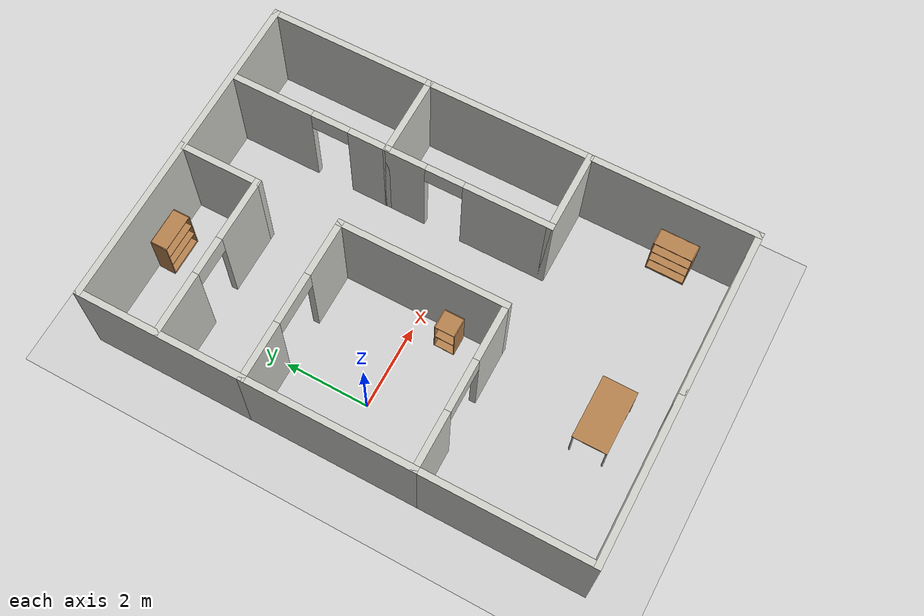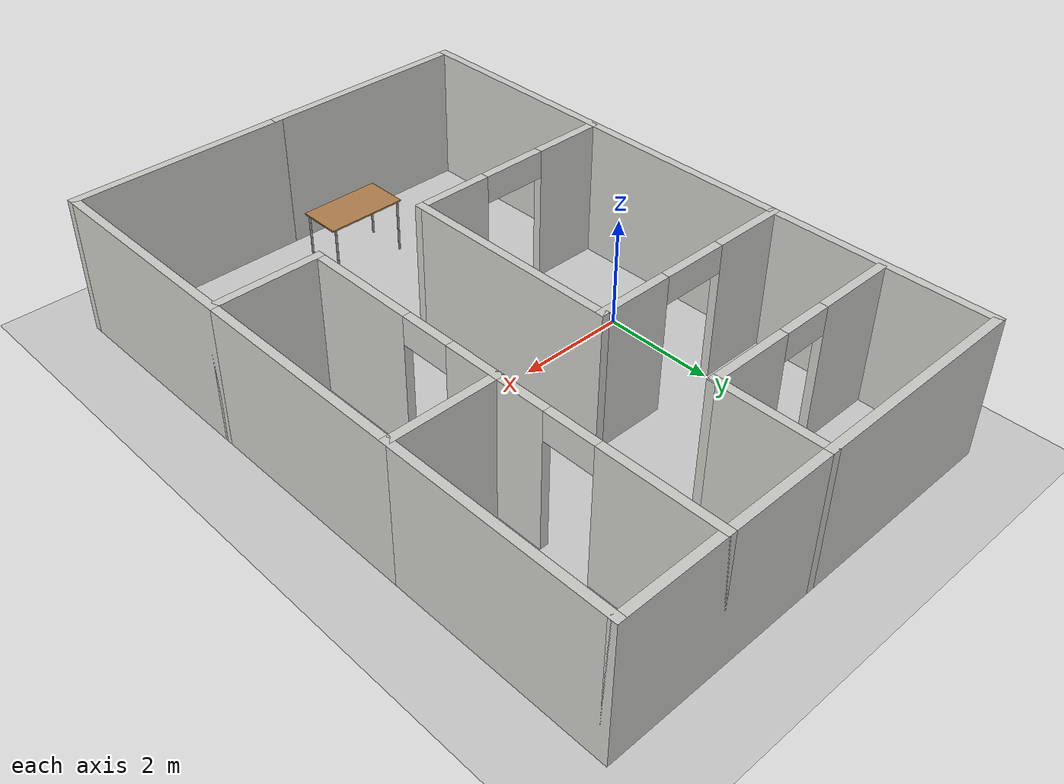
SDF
<sdf version="1.7">
 <world name="default">
  <light name="sun" type="directional">
   <pose>0 0 10 0 -0 0</pose>
   <diffuse>0.8 0.8 0.8 1</diffuse>
   <specular>0.2 0.2 0.2 1</specular>
   <attenuation>
    <range>1000</range>
    <constant>0.9</constant>
    <linear>0.01</linear>
    <quadratic>0.001</quadratic>
   </attenuation>
   <direction>-0.5 0.1 -0.9</direction>
   <spot><inner_angle>0</inner_angle><outer_angle>0</outer_angle><falloff>0</falloff></spot>
  </light>
  <model name="ground_plane">
   <static>1</static>
   <link name="link">
    <collision name="collision">
     <geometry><plane><normal>0 0 1</normal><size>100 100</size></plane></geometry>
     <surface><friction><ode><mu>100</mu><mu2>50</mu2></ode></friction></surface>
    </collision>
    <visual name="visual">
     <cast_shadows>0</cast_shadows>
     <geometry><plane><normal>0 0 1</normal><size>100 100</size></plane></geometry>
     <material>
      <script><uri>file://media/materials/scripts/gazebo.material</uri><name>Gazebo/Grey</name></script>
     </material>
    </visual>
   </link>
  </model>
  <gravity>0 0 -9.8</gravity>
  <magnetic_field>6e-06 2.3e-05 -4.2e-05</magnetic_field>
  <atmosphere type="adiabatic"/>
  <physics type="ode">
   <max_step_size>0.001</max_step_size>
   <real_time_factor>1</real_time_factor>
   <real_time_update_rate>1000</real_time_update_rate>
  </physics>
  <scene><ambient>0.4 0.4 0.4 1</ambient><background>0.7 0.7 0.7 1</background><shadows>1</shadows></scene>
  <audio><device>default</device></audio>
  <spherical_coordinates>
   <surface_model>EARTH_WGS84</surface_model>
   <latitude_deg>0</latitude_deg>
   <longitude_deg>0</longitude_deg>
   <elevation>0</elevation>
   <heading_deg>0</heading_deg>
  </spherical_coordinates>
  <model name="Office">
   <pose>0.034461 0.014388 0 0 -0 1.57428</pose>
   <link name="Wall_44">
    <collision name="Wall_44_Collision">
     <geometry><box><size>4 0.15 2.5</size></box></geometry>
     <pose>0 0 1.25 0 -0 0</pose>
    </collision>
    <visual name="Wall_44_Visual">
     <pose>0 0 1.25 0 -0 0</pose>
     <geometry><box><size>4 0.15 2.5</size></box></geometry>
     <material>
      <script><uri>file://media/materials/scripts/gazebo.material</uri><name>Gazebo/CeilingTiled</name></script>
      <ambient>1 1 1 1</ambient>
     </material>
     <meta><layer>0</layer></meta>
    </visual>
    <pose>0 1.40137 0 0 -0 0</pose>
   </link>
   <link name="Wall_48">
    <collision name="Wall_48_Collision">
     <geometry><box><size>4 0.15 2.5</size></box></geometry>
     <pose>0 0 1.25 0 -0 0</pose>
    </collision>
    <visual name="Wall_48_Visual">
     <pose>0 0 1.25 0 -0 0</pose>
     <geometry><box><size>4 0.15 2.5</size></box></geometry>
     <material>
      <script><uri>file://media/materials/scripts/gazebo.material</uri><name>Gazebo/CeilingTiled</name></script>
      <ambient>1 1 1 1</ambient>
     </material>
     <meta><layer>0</layer></meta>
    </visual>
    <pose>5.775 -0.523631 0 0 -0 -1.5708</pose>
   </link>
   <link name="Wall_50">
    <collision name="Wall_50_Collision">
     <geometry><box><size>4 0.15 2.5</size></box></geometry>
     <pose>0 0 1.25 0 -0 0</pose>
    </collision>
    <visual name="Wall_50_Visual">
     <pose>0 0 1.25 0 -0 0</pose>
     <geometry><box><size>4 0.15 2.5</size></box></geometry>
     <material>
      <script><uri>file://media/materials/scripts/gazebo.material</uri><name>Gazebo/CeilingTiled</name></script>
      <ambient>1 1 1 1</ambient>
     </material>
     <meta><layer>0</layer></meta>
    </visual>
    <pose>-3.85 1.40137 0 0 -0 3.14159</pose>
   </link>
   <link name="Wall_51">
    <collision name="Wall_51_Collision">
     <geometry><box><size>4 0.15 2.5</size></box></geometry>
     <pose>0 0 1.25 0 -0 0</pose>
    </collision>
    <visual name="Wall_51_Visual">
     <pose>0 0 1.25 0 -0 0</pose>
     <geometry><box><size>4 0.15 2.5</size></box></geometry>
     <material>
      <script><uri>file://media/materials/scripts/gazebo.material</uri><name>Gazebo/CeilingTiled</name></script>
      <ambient>1 1 1 1</ambient>
     </material>
     <meta><layer>0</layer></meta>
    </visual>
    <pose>-5.775 -0.523631 0 0 -0 -1.5708</pose>
   </link>
   <link name="Wall_53">
    <collision name="Wall_53_Collision">
     <geometry><box><size>2 0.15 2.5</size></box></geometry>
     <pose>0 0 1.25 0 -0 0</pose>
    </collision>
    <visual name="Wall_53_Visual">
     <pose>0 0 1.25 0 -0 0</pose>
     <geometry><box><size>2 0.15 2.5</size></box></geometry>
     <material>
      <script><uri>file://media/materials/scripts/gazebo.material</uri><name>Gazebo/CeilingTiled</name></script>
      <ambient>1 1 1 1</ambient>
     </material>
     <meta><layer>0</layer></meta>
    </visual>
    <pose>4.85 -2.44863 0 0 -0 3.14159</pose>
   </link>
   <link name="Wall_54">
    <pose>3.925 -0.523631 0 0 -0 1.5708</pose>
    <visual name="Wall_54_Visual_0">
     <pose>-1.2225 0 1.25 0 -0 0</pose>
     <geometry><box><size>1.555 0.15 2.5</size></box></geometry>
     <material>
      <script><uri>file://media/materials/scripts/gazebo.material</uri><name>Gazebo/CeilingTiled</name></script>
      <ambient>1 1 1 1</ambient>
     </material>
     <meta><layer>0</layer></meta>
    </visual>
    <collision name="Wall_54_Collision_0">
     <geometry><box><size>1.555 0.15 2.5</size></box></geometry>
     <pose>-1.2225 0 1.25 0 -0 0</pose>
    </collision>
    <visual name="Wall_54_Visual_1">
     <pose>1.2275 0 1.25 0 -0 0</pose>
     <geometry><box><size>1.545 0.15 2.5</size></box></geometry>
     <material>
      <script><uri>file://media/materials/scripts/gazebo.material</uri><name>Gazebo/CeilingTiled</name></script>
      <ambient>1 1 1 1</ambient>
     </material>
     <meta><layer>0</layer></meta>
    </visual>
    <collision name="Wall_54_Collision_1">
     <geometry><box><size>1.545 0.15 2.5</size></box></geometry>
     <pose>1.2275 0 1.25 0 -0 0</pose>
    </collision>
    <visual name="Wall_54_Visual_2">
     <pose>0.005 0 2.25 0 -0 0</pose>
     <geometry><box><size>0.9 0.15 0.5</size></box></geometry>
     <material>
      <script><uri>file://media/materials/scripts/gazebo.material</uri><name>Gazebo/CeilingTiled</name></script>
      <ambient>1 1 1 1</ambient>
     </material>
     <meta><layer>0</layer></meta>
    </visual>
    <collision name="Wall_54_Collision_2">
     <geometry><box><size>0.9 0.15 0.5</size></box></geometry>
     <pose>0.005 0 2.25 0 -0 0</pose>
    </collision>
   </link>
   <link name="Wall_61">
    <pose>1.925 -0.523631 0 0 -0 -1.5708</pose>
    <visual name="Wall_61_Visual_0">
     <pose>-1.2975 0 1.25 0 -0 0</pose>
     <geometry><box><size>1.405 0.15 2.5</size></box></geometry>
     <material>
      <script><uri>file://media/materials/scripts/gazebo.material</uri><name>Gazebo/CeilingTiled</name></script>
      <ambient>1 1 1 1</ambient>
     </material>
     <meta><layer>0</layer></meta>
    </visual>
    <collision name="Wall_61_Collision_0">
     <geometry><box><size>1.405 0.15 2.5</size></box></geometry>
     <pose>-1.2975 0 1.25 0 -0 0</pose>
    </collision>
    <visual name="Wall_61_Visual_1">
     <pose>1.3025 0 1.25 0 -0 0</pose>
     <geometry><box><size>1.395 0.15 2.5</size></box></geometry>
     <material>
      <script><uri>file://media/materials/scripts/gazebo.material</uri><name>Gazebo/CeilingTiled</name></script>
      <ambient>1 1 1 1</ambient>
     </material>
     <meta><layer>0</layer></meta>
    </visual>
    <collision name="Wall_61_Collision_1">
     <geometry><box><size>1.395 0.15 2.5</size></box></geometry>
     <pose>1.3025 0 1.25 0 -0 0</pose>
    </collision>
    <visual name="Wall_61_Visual_2">
     <pose>0.005 0 2.25 0 -0 0</pose>
     <geometry><box><size>1.2 0.15 0.5</size></box></geometry>
     <material>
      <script><uri>file://media/materials/scripts/gazebo.material</uri><name>Gazebo/CeilingTiled</name></script>
      <ambient>1 1 1 1</ambient>
     </material>
     <meta><layer>0</layer></meta>
    </visual>
    <collision name="Wall_61_Collision_2">
     <geometry><box><size>1.2 0.15 0.5</size></box></geometry>
     <pose>0.005 0 2.25 0 -0 0</pose>
    </collision>
   </link>
   <link name="Wall_63">
    <collision name="Wall_63_Collision">
     <geometry><box><size>4 0.15 2.5</size></box></geometry>
     <pose>0 0 1.25 0 -0 0</pose>
    </collision>
    <visual name="Wall_63_Visual">
     <pose>0 0 1.25 0 -0 0</pose>
     <geometry><box><size>4 0.15 2.5</size></box></geometry>
     <material>
      <script><uri>file://media/materials/scripts/gazebo.material</uri><name>Gazebo/CeilingTiled</name></script>
      <ambient>1 1 1 1</ambient>
     </material>
     <meta><layer>0</layer></meta>
    </visual>
    <pose>3.85 1.40137 0 0 -0 0</pose>
   </link>
   <link name="Wall_65">
    <collision name="Wall_65_Collision">
     <geometry><box><size>4 0.15 2.5</size></box></geometry>
     <pose>0 0 1.25 0 -0 0</pose>
    </collision>
    <visual name="Wall_65_Visual">
     <pose>0 0 1.25 0 -0 0</pose>
     <geometry><box><size>4 0.15 2.5</size></box></geometry>
     <material>
      <script><uri>file://media/materials/scripts/gazebo.material</uri><name>Gazebo/CeilingTiled</name></script>
      <ambient>1 1 1 1</ambient>
     </material>
     <meta><layer>0</layer></meta>
    </visual>
    <pose>0 -2.44863 0 0 -0 3.14159</pose>
   </link>
   <link name="Wall_66">
    <pose>-1.925 -0.523631 0 0 -0 1.5708</pose>
    <visual name="Wall_66_Visual_0">
     <pose>-1.2975 0 1.25 0 -0 0</pose>
     <geometry><box><size>1.405 0.15 2.5</size></box></geometry>
     <material>
      <script><uri>file://media/materials/scripts/gazebo.material</uri><name>Gazebo/CeilingTiled</name></script>
      <ambient>1 1 1 1</ambient>
     </material>
     <meta><layer>0</layer></meta>
    </visual>
    <collision name="Wall_66_Collision_0">
     <geometry><box><size>1.405 0.15 2.5</size></box></geometry>
     <pose>-1.2975 0 1.25 0 -0 0</pose>
    </collision>
    <visual name="Wall_66_Visual_1">
     <pose>1.3025 0 1.25 0 -0 0</pose>
     <geometry><box><size>1.395 0.15 2.5</size></box></geometry>
     <material>
      <script><uri>file://media/materials/scripts/gazebo.material</uri><name>Gazebo/CeilingTiled</name></script>
      <ambient>1 1 1 1</ambient>
     </material>
     <meta><layer>0</layer></meta>
    </visual>
    <collision name="Wall_66_Collision_1">
     <geometry><box><size>1.395 0.15 2.5</size></box></geometry>
     <pose>1.3025 0 1.25 0 -0 0</pose>
    </collision>
    <visual name="Wall_66_Visual_2">
     <pose>0.005 0 2.25 0 -0 0</pose>
     <geometry><box><size>1.2 0.15 0.5</size></box></geometry>
     <material>
      <script><uri>file://media/materials/scripts/gazebo.material</uri><name>Gazebo/CeilingTiled</name></script>
      <ambient>1 1 1 1</ambient>
     </material>
     <meta><layer>0</layer></meta>
    </visual>
    <collision name="Wall_66_Collision_2">
     <geometry><box><size>1.2 0.15 0.5</size></box></geometry>
     <pose>0.005 0 2.25 0 -0 0</pose>
    </collision>
   </link>
   <link name="Wall_68">
    <collision name="Wall_68_Collision">
     <geometry><box><size>4 0.15 2.5</size></box></geometry>
     <pose>0 0 1.25 0 -0 0</pose>
    </collision>
    <visual name="Wall_68_Visual">
     <pose>0 0 1.25 0 -0 0</pose>
     <geometry><box><size>4 0.15 2.5</size></box></geometry>
     <material>
      <script><uri>file://media/materials/scripts/gazebo.material</uri><name>Gazebo/CeilingTiled</name></script>
      <ambient>1 1 1 1</ambient>
     </material>
     <meta><layer>0</layer></meta>
    </visual>
    <pose>-5.775 -4.37363 0 0 -0 -1.5708</pose>
   </link>
   <link name="Wall_69">
    <collision name="Wall_69_Collision">
     <geometry><box><size>4 0.15 2.5</size></box></geometry>
     <pose>0 0 1.25 0 -0 0</pose>
    </collision>
    <visual name="Wall_69_Visual">
     <pose>0 0 1.25 0 -0 0</pose>
     <geometry><box><size>4 0.15 2.5</size></box></geometry>
     <material>
      <script><uri>file://media/materials/scripts/gazebo.material</uri><name>Gazebo/CeilingTiled</name></script>
      <ambient>1 1 1 1</ambient>
     </material>
     <meta><layer>0</layer></meta>
    </visual>
    <pose>-3.85 -6.29863 0 0 -0 0</pose>
   </link>
   <link name="Wall_70">
    <collision name="Wall_70_Collision">
     <geometry><box><size>2 0.15 2.5</size></box></geometry>
     <pose>0 0 1.25 0 -0 0</pose>
    </collision>
    <visual name="Wall_70_Visual">
     <pose>0 0 1.25 0 -0 0</pose>
     <geometry><box><size>2 0.15 2.5</size></box></geometry>
     <material>
      <script><uri>file://media/materials/scripts/gazebo.material</uri><name>Gazebo/CeilingTiled</name></script>
      <ambient>1 1 1 1</ambient>
     </material>
     <meta><layer>0</layer></meta>
    </visual>
    <pose>-1.925 -5.37363 0 0 -0 1.5708</pose>
   </link>
   <link name="Wall_71">
    <pose>0 -4.44863 0 0 -0 0</pose>
    <visual name="Wall_71_Visual_0">
     <pose>-0.9525 0 1.25 0 -0 0</pose>
     <geometry><box><size>2.095 0.15 2.5</size></box></geometry>
     <material>
      <script><uri>file://media/materials/scripts/gazebo.material</uri><name>Gazebo/CeilingTiled</name></script>
      <ambient>1 1 1 1</ambient>
     </material>
     <meta><layer>0</layer></meta>
    </visual>
    <collision name="Wall_71_Collision_0">
     <geometry><box><size>2.095 0.15 2.5</size></box></geometry>
     <pose>-0.9525 0 1.25 0 -0 0</pose>
    </collision>
    <visual name="Wall_71_Visual_1">
     <pose>1.4975 0 1.25 0 -0 0</pose>
     <geometry><box><size>1.005 0.15 2.5</size></box></geometry>
     <material>
      <script><uri>file://media/materials/scripts/gazebo.material</uri><name>Gazebo/CeilingTiled</name></script>
      <ambient>1 1 1 1</ambient>
     </material>
     <meta><layer>0</layer></meta>
    </visual>
    <collision name="Wall_71_Collision_1">
     <geometry><box><size>1.005 0.15 2.5</size></box></geometry>
     <pose>1.4975 0 1.25 0 -0 0</pose>
    </collision>
    <visual name="Wall_71_Visual_2">
     <pose>0.545 0 2.25 0 -0 0</pose>
     <geometry><box><size>0.9 0.15 0.5</size></box></geometry>
     <material>
      <script><uri>file://media/materials/scripts/gazebo.material</uri><name>Gazebo/CeilingTiled</name></script>
      <ambient>1 1 1 1</ambient>
     </material>
     <meta><layer>0</layer></meta>
    </visual>
    <collision name="Wall_71_Collision_2">
     <geometry><box><size>0.9 0.15 0.5</size></box></geometry>
     <pose>0.545 0 2.25 0 -0 0</pose>
    </collision>
   </link>
   <link name="Wall_72">
    <collision name="Wall_72_Collision">
     <geometry><box><size>2 0.15 2.5</size></box></geometry>
     <pose>0 0 1.25 0 -0 0</pose>
    </collision>
    <visual name="Wall_72_Visual">
     <pose>0 0 1.25 0 -0 0</pose>
     <geometry><box><size>2 0.15 2.5</size></box></geometry>
     <material>
      <script><uri>file://media/materials/scripts/gazebo.material</uri><name>Gazebo/CeilingTiled</name></script>
      <ambient>1 1 1 1</ambient>
     </material>
     <meta><layer>0</layer></meta>
    </visual>
    <pose>1.925 -5.37363 0 0 -0 -1.5708</pose>
   </link>
   <link name="Wall_73">
    <collision name="Wall_73_Collision">
     <geometry><box><size>4 0.15 2.5</size></box></geometry>
     <pose>0 0 1.25 0 -0 0</pose>
    </collision>
    <visual name="Wall_73_Visual">
     <pose>0 0 1.25 0 -0 0</pose>
     <geometry><box><size>4 0.15 2.5</size></box></geometry>
     <material>
      <script><uri>file://media/materials/scripts/gazebo.material</uri><name>Gazebo/CeilingTiled</name></script>
      <ambient>1 1 1 1</ambient>
     </material>
     <meta><layer>0</layer></meta>
    </visual>
    <pose>0 -6.29863 0 0 -0 3.14159</pose>
   </link>
   <link name="Wall_75">
    <collision name="Wall_75_Collision">
     <geometry><box><size>4 0.15 2.5</size></box></geometry>
     <pose>0 0 1.25 0 -0 0</pose>
    </collision>
    <visual name="Wall_75_Visual">
     <pose>0 0 1.25 0 -0 0</pose>
     <geometry><box><size>4 0.15 2.5</size></box></geometry>
     <material>
      <script><uri>file://media/materials/scripts/gazebo.material</uri><name>Gazebo/CeilingTiled</name></script>
      <ambient>1 1 1 1</ambient>
     </material>
     <meta><layer>0</layer></meta>
    </visual>
    <pose>3.85 -6.29863 0 0 -0 0</pose>
   </link>
   <link name="Wall_76">
    <collision name="Wall_76_Collision">
     <geometry><box><size>4 0.15 2.5</size></box></geometry>
     <pose>0 0 1.25 0 -0 0</pose>
    </collision>
    <visual name="Wall_76_Visual">
     <pose>0 0 1.25 0 -0 0</pose>
     <geometry><box><size>4 0.15 2.5</size></box></geometry>
     <material>
      <script><uri>file://media/materials/scripts/gazebo.material</uri><name>Gazebo/CeilingTiled</name></script>
      <ambient>1 1 1 1</ambient>
     </material>
     <meta><layer>0</layer></meta>
    </visual>
    <pose>5.775 -4.37363 0 0 -0 1.5708</pose>
   </link>
   <link name="Wall_78">
    <pose>3.85 -4.44863 0 0 -0 0</pose>
    <visual name="Wall_78_Visual_0">
     <pose>-1.4975 0 1.25 0 -0 0</pose>
     <geometry><box><size>1.005 0.15 2.5</size></box></geometry>
     <material>
      <script><uri>file://media/materials/scripts/gazebo.material</uri><name>Gazebo/CeilingTiled</name></script>
      <ambient>1 1 1 1</ambient>
     </material>
     <meta><layer>0</layer></meta>
    </visual>
    <collision name="Wall_78_Collision_0">
     <geometry><box><size>1.005 0.15 2.5</size></box></geometry>
     <pose>-1.4975 0 1.25 0 -0 0</pose>
    </collision>
    <visual name="Wall_78_Visual_1">
     <pose>0.9525 0 1.25 0 -0 0</pose>
     <geometry><box><size>2.095 0.15 2.5</size></box></geometry>
     <material>
      <script><uri>file://media/materials/scripts/gazebo.material</uri><name>Gazebo/CeilingTiled</name></script>
      <ambient>1 1 1 1</ambient>
     </material>
     <meta><layer>0</layer></meta>
    </visual>
    <collision name="Wall_78_Collision_1">
     <geometry><box><size>2.095 0.15 2.5</size></box></geometry>
     <pose>0.9525 0 1.25 0 -0 0</pose>
    </collision>
    <visual name="Wall_78_Visual_2">
     <pose>-0.545 0 2.25 0 -0 0</pose>
     <geometry><box><size>0.9 0.15 0.5</size></box></geometry>
     <material>
      <script><uri>file://media/materials/scripts/gazebo.material</uri><name>Gazebo/CeilingTiled</name></script>
      <ambient>1 1 1 1</ambient>
     </material>
     <meta><layer>0</layer></meta>
    </visual>
    <collision name="Wall_78_Collision_2">
     <geometry><box><size>0.9 0.15 0.5</size></box></geometry>
     <pose>-0.545 0 2.25 0 -0 0</pose>
    </collision>
   </link>
   <static>1</static>
  </model>
  <model name="table">
   <static>1</static>
   <link name="link">
    <collision name="surface">
     <pose>0 0 1 0 -0 0</pose>
     <geometry><box><size>1.5 0.8 0.03</size></box></geometry>
     <surface><friction><ode><mu>0.6</mu><mu2>0.6</mu2></ode></friction></surface>
    </collision>
    <visual name="visual1">
     <pose>0 0 1 0 -0 0</pose>
     <geometry><box><size>1.5 0.8 0.03</size></box></geometry>
     <material>
      <script><uri>file://media/materials/scripts/gazebo.material</uri><name>Gazebo/Wood</name></script>
     </material>
    </visual>
    <collision name="front_left_leg_collision">
     <pose>0.68 0.38 0.5 0 -0 0</pose>
     <geometry><cylinder><radius>0.02</radius><length>1</length></cylinder></geometry>
    </collision>
    <visual name="front_left_leg_visual">
     <pose>0.68 0.38 0.5 0 -0 0</pose>
     <geometry><cylinder><radius>0.02</radius><length>1</length></cylinder></geometry>
     <material>
      <script><uri>file://media/materials/scripts/gazebo.material</uri><name>Gazebo/Grey</name></script>
     </material>
    </visual>
    <collision name="front_right_leg_collision">
     <pose>0.68 -0.38 0.5 0 -0 0</pose>
     <geometry><cylinder><radius>0.02</radius><length>1</length></cylinder></geometry>
    </collision>
    <visual name="front_right_leg_visual">
     <pose>0.68 -0.38 0.5 0 -0 0</pose>
     <geometry><cylinder><radius>0.02</radius><length>1</length></cylinder></geometry>
     <material>
      <script><uri>file://media/materials/scripts/gazebo.material</uri><name>Gazebo/Grey</name></script>
     </material>
    </visual>
    <collision name="back_right_leg_collision">
     <pose>-0.68 -0.38 0.5 0 -0 0</pose>
     <geometry><cylinder><radius>0.02</radius><length>1</length></cylinder></geometry>
    </collision>
    <visual name="back_right_leg_visual">
     <pose>-0.68 -0.38 0.5 0 -0 0</pose>
     <geometry><cylinder><radius>0.02</radius><length>1</length></cylinder></geometry>
     <material>
      <script><uri>file://media/materials/scripts/gazebo.material</uri><name>Gazebo/Grey</name></script>
     </material>
    </visual>
    <collision name="back_left_leg_collision">
     <pose>-0.68 0.38 0.5 0 -0 0</pose>
     <geometry><cylinder><radius>0.02</radius><length>1</length></cylinder></geometry>
    </collision>
    <visual name="back_left_leg_visual">
     <pose>-0.68 0.38 0.5 0 -0 0</pose>
     <geometry><cylinder><radius>0.02</radius><length>1</length></cylinder></geometry>
     <material>
      <script><uri>file://media/materials/scripts/gazebo.material</uri><name>Gazebo/Grey</name></script>
     </material>
    </visual>
   </link>
   <pose>1.88883 -4.56457 0 0 -0 0</pose>
  </model>
  <model name="bookshelf">
   <static>1</static>
   <link name="link">
    <inertial><mass>1</mass></inertial>
    <collision name="back">
     <pose>0 0.005 0.6 0 -0 0</pose>
     <geometry><box><size>0.9 0.01 1.2</size></box></geometry>
    </collision>
    <visual name="visual1">
     <pose>0 0.005 0.6 0 -0 0</pose>
     <geometry><box><size>0.9 0.01 1.2</size></box></geometry>
     <material>
      <script><uri>file://media/materials/scripts/gazebo.material</uri><name>Gazebo/Wood</name></script>
     </material>
    </visual>
    <collision name="left_side">
     <pose>0.45 -0.195 0.6 0 -0 0</pose>
     <geometry><box><size>0.02 0.4 1.2</size></box></geometry>
    </collision>
    <visual name="visual2">
     <pose>0.45 -0.195 0.6 0 -0 0</pose>
     <geometry><box><size>0.02 0.4 1.2</size></box></geometry>
     <material>
      <script><uri>file://media/materials/scripts/gazebo.material</uri><name>Gazebo/Wood</name></script>
     </material>
    </visual>
    <collision name="right_side">
     <pose>-0.45 -0.195 0.6 0 -0 0</pose>
     <geometry><box><size>0.02 0.4 1.2</size></box></geometry>
    </collision>
    <visual name="visual3">
     <pose>-0.45 -0.195 0.6 0 -0 0</pose>
     <geometry><box><size>0.02 0.4 1.2</size></box></geometry>
     <material>
      <script><uri>file://media/materials/scripts/gazebo.material</uri><name>Gazebo/Wood</name></script>
     </material>
    </visual>
    <collision name="bottom">
     <pose>0 -0.195 0.03 0 -0 0</pose>
     <geometry><box><size>0.88 0.4 0.06</size></box></geometry>
    </collision>
    <visual name="visual4">
     <pose>0 -0.195 0.03 0 -0 0</pose>
     <geometry><box><size>0.88 0.4 0.06</size></box></geometry>
     <material>
      <script><uri>file://media/materials/scripts/gazebo.material</uri><name>Gazebo/Wood</name></script>
     </material>
    </visual>
    <collision name="top">
     <pose>0 -0.195 1.19 0 -0 0</pose>
     <geometry><box><size>0.88 0.4 0.02</size></box></geometry>
    </collision>
    <visual name="visual5">
     <pose>0 -0.195 1.19 0 -0 0</pose>
     <geometry><box><size>0.88 0.4 0.02</size></box></geometry>
     <material>
      <script><uri>file://media/materials/scripts/gazebo.material</uri><name>Gazebo/Wood</name></script>
     </material>
    </visual>
    <collision name="low_shelf">
     <pose>0 -0.195 0.43 0 -0 0</pose>
     <geometry><box><size>0.88 0.4 0.02</size></box></geometry>
    </collision>
    <visual name="visual6">
     <pose>0 -0.195 0.43 0 -0 0</pose>
     <geometry><box><size>0.88 0.4 0.02</size></box></geometry>
     <material>
      <script><uri>file://media/materials/scripts/gazebo.material</uri><name>Gazebo/Wood</name></script>
     </material>
    </visual>
    <collision name="high_shelf">
     <pose>0 -0.195 0.8 0 -0 0</pose>
     <geometry><box><size>0.88 0.4 0.02</size></box></geometry>
    </collision>
    <visual name="visual7">
     <pose>0 -0.195 0.8 0 -0 0</pose>
     <geometry><box><size>0.88 0.4 0.02</size></box></geometry>
     <material>
      <script><uri>file://media/materials/scripts/gazebo.material</uri><name>Gazebo/Wood</name></script>
     </material>
    </visual>
   </link>
   <pose>6.21721 -4.27461 0 0 0 -1.57575</pose>
  </model>
  <model name="cabinet">
   <static>1</static>
   <link name="cabinet_bottom_plate">
    <inertial>
     <pose>0 0 -1 0 -0 0</pose>
     <inertia><ixx>2.05</ixx><ixy>0</ixy><ixz>0</ixz><iyy>2.05</iyy><iyz>0</iyz><izz>2.05</izz></inertia>
     <mass>25</mass>
    </inertial>
    <collision name="cabinet_bottom_plate_geom">
     <pose>0 0 0.01 0 -0 0</pose>
     <geometry><box><size>0.45 0.45 0.02</size></box></geometry>
    </collision>
    <visual name="cabinet_bottom_plate_geom_visual">
     <pose>0 0 0.01 0 -0 0</pose>
     <geometry><box><size>0.45 0.45 0.02</size></box></geometry>
     <material>
      <script><uri>file://media/materials/scripts/gazebo.material</uri><name>Gazebo/Wood</name></script>
     </material>
    </visual>
    <collision name="cabinet_bottom_plate_geom_cabinet_back_plate">
     <pose>0.235 0 0.51 0 -0 0</pose>
     <geometry><box><size>0.02 0.45 1.02</size></box></geometry>
    </collision>
    <visual name="cabinet_bottom_plate_geom_cabinet_back_plate_visual">
     <pose>0.235 0 0.51 0 -0 0</pose>
     <geometry><box><size>0.02 0.45 1.02</size></box></geometry>
     <material>
      <script><uri>file://media/materials/scripts/gazebo.material</uri><name>Gazebo/Wood</name></script>
     </material>
    </visual>
    <collision name="cabinet_bottom_plate_geom_cabinet_left_plate">
     <pose>0 0.235 0.51 0 -0 0</pose>
     <geometry><box><size>0.45 0.02 1.02</size></box></geometry>
    </collision>
    <visual name="cabinet_bottom_plate_geom_cabinet_left_plate_visual">
     <pose>0 0.235 0.51 0 -0 0</pose>
     <geometry><box><size>0.45 0.02 1.02</size></box></geometry>
     <material>
      <script><uri>file://media/materials/scripts/gazebo.material</uri><name>Gazebo/Wood</name></script>
     </material>
    </visual>
    <collision name="cabinet_bottom_plate_geom_cabinet_middle_plate">
     <pose>0 0 0.51 0 -0 0</pose>
     <geometry><box><size>0.45 0.45 0.02</size></box></geometry>
    </collision>
    <visual name="cabinet_bottom_plate_geom_cabinet_middle_plate_visual">
     <pose>0 0 0.51 0 -0 0</pose>
     <geometry><box><size>0.45 0.45 0.02</size></box></geometry>
     <material>
      <script><uri>file://media/materials/scripts/gazebo.material</uri><name>Gazebo/Wood</name></script>
     </material>
    </visual>
    <collision name="cabinet_bottom_plate_geom_cabinet_right_plate">
     <pose>0 -0.235 0.51 0 -0 0</pose>
     <geometry><box><size>0.45 0.02 1.02</size></box></geometry>
    </collision>
    <visual name="cabinet_bottom_plate_geom_cabinet_right_plate_visual">
     <pose>0 -0.235 0.51 0 -0 0</pose>
     <geometry><box><size>0.45 0.02 1.02</size></box></geometry>
     <material>
      <script><uri>file://media/materials/scripts/gazebo.material</uri><name>Gazebo/Wood</name></script>
     </material>
    </visual>
    <collision name="cabinet_bottom_plate_geom_cabinet_top_plate">
     <pose>0 0 1.01 0 -0 0</pose>
     <geometry><box><size>0.45 0.45 0.02</size></box></geometry>
    </collision>
    <visual name="cabinet_bottom_plate_geom_cabinet_top_plate_visual">
     <pose>0 0 1.01 0 -0 0</pose>
     <geometry><box><size>0.45 0.45 0.02</size></box></geometry>
     <material>
      <script><uri>file://media/materials/scripts/gazebo.material</uri><name>Gazebo/Wood</name></script>
     </material>
    </visual>
   </link>
   <pose>2.13847 -0.814701 0 0 -0 0</pose>
  </model>
  <model name="bookshelf_0">
   <static>1</static>
   <link name="link">
    <inertial><mass>1</mass></inertial>
    <collision name="back">
     <pose>0 0.005 0.6 0 -0 0</pose>
     <geometry><box><size>0.9 0.01 1.2</size></box></geometry>
    </collision>
    <visual name="visual1">
     <pose>0 0.005 0.6 0 -0 0</pose>
     <geometry><box><size>0.9 0.01 1.2</size></box></geometry>
     <material>
      <script><uri>file://media/materials/scripts/gazebo.material</uri><name>Gazebo/Wood</name></script>
     </material>
    </visual>
    <collision name="left_side">
     <pose>0.45 -0.195 0.6 0 -0 0</pose>
     <geometry><box><size>0.02 0.4 1.2</size></box></geometry>
    </collision>
    <visual name="visual2">
     <pose>0.45 -0.195 0.6 0 -0 0</pose>
     <geometry><box><size>0.02 0.4 1.2</size></box></geometry>
     <material>
      <script><uri>file://media/materials/scripts/gazebo.material</uri><name>Gazebo/Wood</name></script>
     </material>
    </visual>
    <collision name="right_side">
     <pose>-0.45 -0.195 0.6 0 -0 0</pose>
     <geometry><box><size>0.02 0.4 1.2</size></box></geometry>
    </collision>
    <visual name="visual3">
     <pose>-0.45 -0.195 0.6 0 -0 0</pose>
     <geometry><box><size>0.02 0.4 1.2</size></box></geometry>
     <material>
      <script><uri>file://media/materials/scripts/gazebo.material</uri><name>Gazebo/Wood</name></script>
     </material>
    </visual>
    <collision name="bottom">
     <pose>0 -0.195 0.03 0 -0 0</pose>
     <geometry><box><size>0.88 0.4 0.06</size></box></geometry>
    </collision>
    <visual name="visual4">
     <pose>0 -0.195 0.03 0 -0 0</pose>
     <geometry><box><size>0.88 0.4 0.06</size></box></geometry>
     <material>
      <script><uri>file://media/materials/scripts/gazebo.material</uri><name>Gazebo/Wood</name></script>
     </material>
    </visual>
    <collision name="top">
     <pose>0 -0.195 1.19 0 -0 0</pose>
     <geometry><box><size>0.88 0.4 0.02</size></box></geometry>
    </collision>
    <visual name="visual5">
     <pose>0 -0.195 1.19 0 -0 0</pose>
     <geometry><box><size>0.88 0.4 0.02</size></box></geometry>
     <material>
      <script><uri>file://media/materials/scripts/gazebo.material</uri><name>Gazebo/Wood</name></script>
     </material>
    </visual>
    <collision name="low_shelf">
     <pose>0 -0.195 0.43 0 -0 0</pose>
     <geometry><box><size>0.88 0.4 0.02</size></box></geometry>
    </collision>
    <visual name="visual6">
     <pose>0 -0.195 0.43 0 -0 0</pose>
     <geometry><box><size>0.88 0.4 0.02</size></box></geometry>
     <material>
      <script><uri>file://media/materials/scripts/gazebo.material</uri><name>Gazebo/Wood</name></script>
     </material>
    </visual>
    <collision name="high_shelf">
     <pose>0 -0.195 0.8 0 -0 0</pose>
     <geometry><box><size>0.88 0.4 0.02</size></box></geometry>
    </collision>
    <visual name="visual7">
     <pose>0 -0.195 0.8 0 -0 0</pose>
     <geometry><box><size>0.88 0.4 0.02</size></box></geometry>
     <material>
      <script><uri>file://media/materials/scripts/gazebo.material</uri><name>Gazebo/Wood</name></script>
     </material>
    </visual>
   </link>
   <pose>1.10808 5.68127 0 0 -0 0</pose>
  </model>
 </world>
</sdf>
